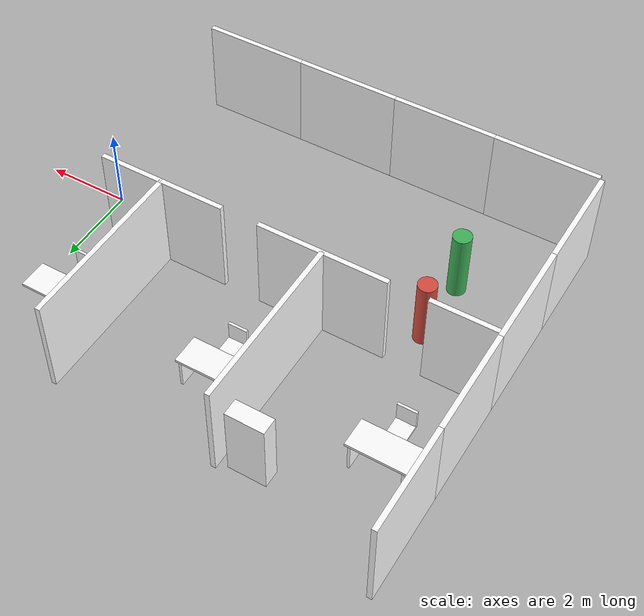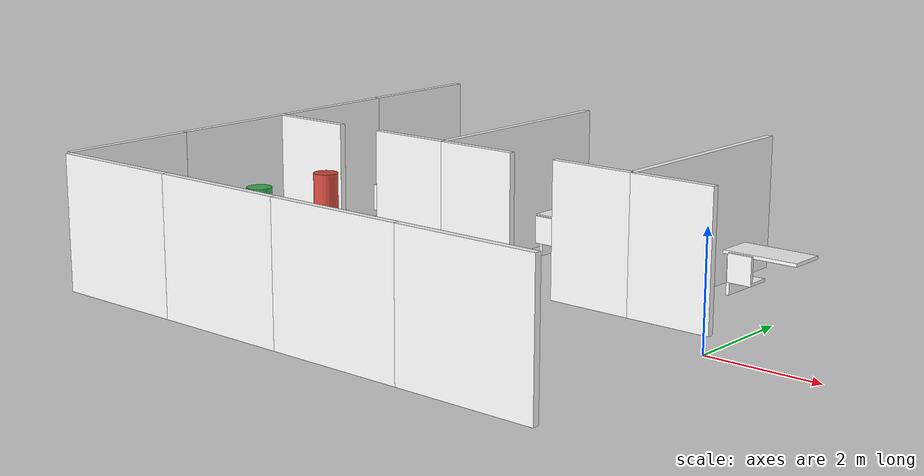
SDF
<sdf version="1.9">
 <world name="office">
  <model name="ground_plane">
   <static>true</static>
   <link name="link">
    <collision name="collision">
     <geometry><plane><normal>0 0 1</normal><size>100 100</size></plane></geometry>
     <surface><friction><ode><mu>1.0</mu><mu2>1.0</mu2></ode></friction></surface>
    </collision>
   </link>
  </model>
  <model name="w_s0">
   <static>true</static>
   <pose>-8.7500 -4.0600 1.2000 0 0 0</pose>
   <link name="link">
    <collision name="c"><geometry><box><size>2.5000 0.1200 2.4000</size></box></geometry></collision>
    <visual name="v">
     <geometry><box><size>2.5000 0.1200 2.4000</size></box></geometry>
     <material>
      <diffuse>1 1 1 1</diffuse>
      <pbr>
       <metal>
        <albedo_map>model://room_materials/materials/textures/office_000.png</albedo_map>
        <roughness>0.92</roughness>
       </metal>
      </pbr>
     </material>
    </visual>
   </link>
  </model>
  <model name="w_s2">
   <static>true</static>
   <pose>-6.2500 -4.0600 1.2000 0 0 0</pose>
   <link name="link">
    <collision name="c"><geometry><box><size>2.5000 0.1200 2.4000</size></box></geometry></collision>
    <visual name="v">
     <geometry><box><size>2.5000 0.1200 2.4000</size></box></geometry>
     <material>
      <diffuse>1 1 1 1</diffuse>
      <pbr>
       <metal>
        <albedo_map>model://room_materials/materials/textures/office_002.png</albedo_map>
        <roughness>0.92</roughness>
       </metal>
      </pbr>
     </material>
    </visual>
   </link>
  </model>
  <model name="w_s4">
   <static>true</static>
   <pose>-3.7500 -4.0600 1.2000 0 0 0</pose>
   <link name="link">
    <collision name="c"><geometry><box><size>2.5000 0.1200 2.4000</size></box></geometry></collision>
    <visual name="v">
     <geometry><box><size>2.5000 0.1200 2.4000</size></box></geometry>
     <material>
      <diffuse>1 1 1 1</diffuse>
      <pbr>
       <metal>
        <albedo_map>model://room_materials/materials/textures/office_004.png</albedo_map>
        <roughness>0.92</roughness>
       </metal>
      </pbr>
     </material>
    </visual>
   </link>
  </model>
  <model name="w_s6">
   <static>true</static>
   <pose>-1.2500 -4.0600 1.2000 0 0 0</pose>
   <link name="link">
    <collision name="c"><geometry><box><size>2.5000 0.1200 2.4000</size></box></geometry></collision>
    <visual name="v">
     <geometry><box><size>2.5000 0.1200 2.4000</size></box></geometry>
     <material>
      <diffuse>1 1 1 1</diffuse>
      <pbr>
       <metal>
        <albedo_map>model://room_materials/materials/textures/office_006.png</albedo_map>
        <roughness>0.92</roughness>
       </metal>
      </pbr>
     </material>
    </visual>
   </link>
  </model>
  <model name="w_w16">
   <static>true</static>
   <pose>-10.0600 -2.7500 1.2000 0 0 0</pose>
   <link name="link">
    <collision name="c"><geometry><box><size>0.1200 2.5000 2.4000</size></box></geometry></collision>
    <visual name="v">
     <geometry><box><size>0.1200 2.5000 2.4000</size></box></geometry>
     <material>
      <diffuse>1 1 1 1</diffuse>
      <pbr>
       <metal>
        <albedo_map>model://room_materials/materials/textures/office_016.png</albedo_map>
        <roughness>0.92</roughness>
       </metal>
      </pbr>
     </material>
    </visual>
   </link>
  </model>
  <model name="w_w18">
   <static>true</static>
   <pose>-10.0600 -0.2500 1.2000 0 0 0</pose>
   <link name="link">
    <collision name="c"><geometry><box><size>0.1200 2.5000 2.4000</size></box></geometry></collision>
    <visual name="v">
     <geometry><box><size>0.1200 2.5000 2.4000</size></box></geometry>
     <material>
      <diffuse>1 1 1 1</diffuse>
      <pbr>
       <metal>
        <albedo_map>model://room_materials/materials/textures/office_018.png</albedo_map>
        <roughness>0.92</roughness>
       </metal>
      </pbr>
     </material>
    </visual>
   </link>
  </model>
  <model name="w_w20">
   <static>true</static>
   <pose>-10.0600 2.2500 1.2000 0 0 0</pose>
   <link name="link">
    <collision name="c"><geometry><box><size>0.1200 2.5000 2.4000</size></box></geometry></collision>
    <visual name="v">
     <geometry><box><size>0.1200 2.5000 2.4000</size></box></geometry>
     <material>
      <diffuse>1 1 1 1</diffuse>
      <pbr>
       <metal>
        <albedo_map>model://room_materials/materials/textures/office_020.png</albedo_map>
        <roughness>0.92</roughness>
       </metal>
      </pbr>
     </material>
    </visual>
   </link>
  </model>
  <model name="w_w22">
   <static>true</static>
   <pose>-10.0600 4.7500 1.2000 0 0 0</pose>
   <link name="link">
    <collision name="c"><geometry><box><size>0.1200 2.5000 2.4000</size></box></geometry></collision>
    <visual name="v">
     <geometry><box><size>0.1200 2.5000 2.4000</size></box></geometry>
     <material>
      <diffuse>1 1 1 1</diffuse>
      <pbr>
       <metal>
        <albedo_map>model://room_materials/materials/textures/office_022.png</albedo_map>
        <roughness>0.92</roughness>
       </metal>
      </pbr>
     </material>
    </visual>
   </link>
  </model>
  <model name="cA_n_0a">
   <static>true</static>
   <pose>-9.2250 0.9000 1.2000 0 0 0</pose>
   <link name="link">
    <collision name="c"><geometry><box><size>1.5500 0.1200 2.4000</size></box></geometry></collision>
    <visual name="v">
     <geometry><box><size>1.5500 0.1200 2.4000</size></box></geometry>
     <material>
      <diffuse>1 1 1 1</diffuse>
      <pbr>
       <metal>
        <albedo_map>model://room_materials/materials/textures/office_028.png</albedo_map>
        <roughness>0.92</roughness>
       </metal>
      </pbr>
     </material>
    </visual>
   </link>
  </model>
  <model name="cA_n_0b">
   <static>true</static>
   <pose>-6.7750 0.9000 1.2000 0 0 0</pose>
   <link name="link">
    <collision name="c"><geometry><box><size>1.5500 0.1200 2.4000</size></box></geometry></collision>
    <visual name="v">
     <geometry><box><size>1.5500 0.1200 2.4000</size></box></geometry>
     <material>
      <diffuse>1 1 1 1</diffuse>
      <pbr>
       <metal>
        <albedo_map>model://room_materials/materials/textures/office_029.png</albedo_map>
        <roughness>0.92</roughness>
       </metal>
      </pbr>
     </material>
    </visual>
   </link>
  </model>
  <model name="cA_n_1a">
   <static>true</static>
   <pose>-5.2250 0.9000 1.2000 0 0 0</pose>
   <link name="link">
    <collision name="c"><geometry><box><size>1.5500 0.1200 2.4000</size></box></geometry></collision>
    <visual name="v">
     <geometry><box><size>1.5500 0.1200 2.4000</size></box></geometry>
     <material>
      <diffuse>1 1 1 1</diffuse>
      <pbr>
       <metal>
        <albedo_map>model://room_materials/materials/textures/office_030.png</albedo_map>
        <roughness>0.92</roughness>
       </metal>
      </pbr>
     </material>
    </visual>
   </link>
  </model>
  <model name="cA_n_1b">
   <static>true</static>
   <pose>-2.7750 0.9000 1.2000 0 0 0</pose>
   <link name="link">
    <collision name="c"><geometry><box><size>1.5500 0.1200 2.4000</size></box></geometry></collision>
    <visual name="v">
     <geometry><box><size>1.5500 0.1200 2.4000</size></box></geometry>
     <material>
      <diffuse>1 1 1 1</diffuse>
      <pbr>
       <metal>
        <albedo_map>model://room_materials/materials/textures/office_031.png</albedo_map>
        <roughness>0.92</roughness>
       </metal>
      </pbr>
     </material>
    </visual>
   </link>
  </model>
  <model name="cA_n_2a">
   <static>true</static>
   <pose>-1.2250 0.9000 1.2000 0 0 0</pose>
   <link name="link">
    <collision name="c"><geometry><box><size>1.5500 0.1200 2.4000</size></box></geometry></collision>
    <visual name="v">
     <geometry><box><size>1.5500 0.1200 2.4000</size></box></geometry>
     <material>
      <diffuse>1 1 1 1</diffuse>
      <pbr>
       <metal>
        <albedo_map>model://room_materials/materials/textures/office_032.png</albedo_map>
        <roughness>0.92</roughness>
       </metal>
      </pbr>
     </material>
    </visual>
   </link>
  </model>
  <model name="p1_0">
   <static>true</static>
   <pose>-6.0000 3.0000 1.2000 0 0 0</pose>
   <link name="link">
    <collision name="c"><geometry><box><size>0.1200 4.2000 2.4000</size></box></geometry></collision>
    <visual name="v">
     <geometry><box><size>0.1200 4.2000 2.4000</size></box></geometry>
     <material>
      <diffuse>1 1 1 1</diffuse>
      <pbr>
       <metal>
        <albedo_map>model://room_materials/materials/textures/office_058.png</albedo_map>
        <roughness>0.92</roughness>
       </metal>
      </pbr>
     </material>
    </visual>
   </link>
  </model>
  <model name="p1_1">
   <static>true</static>
   <pose>-2.0000 3.0000 1.2000 0 0 0</pose>
   <link name="link">
    <collision name="c"><geometry><box><size>0.1200 4.2000 2.4000</size></box></geometry></collision>
    <visual name="v">
     <geometry><box><size>0.1200 4.2000 2.4000</size></box></geometry>
     <material>
      <diffuse>1 1 1 1</diffuse>
      <pbr>
       <metal>
        <albedo_map>model://room_materials/materials/textures/office_060.png</albedo_map>
        <roughness>0.92</roughness>
       </metal>
      </pbr>
     </material>
    </visual>
   </link>
  </model>
  <model name="desk_0">
   <static>true</static>
   <pose>-8.900 3.400 0.750 0 0 0</pose>
   <link name="link">
    <collision name="c"><geometry><box><size>1.400 0.700 0.060</size></box></geometry></collision>
    <visual name="v">
     <geometry><box><size>1.400 0.700 0.060</size></box></geometry>
     <material>
      <diffuse>1 1 1 1</diffuse>
      <pbr>
       <metal>
        <albedo_map>model://room_materials/materials/textures/poster1.png</albedo_map>
        <roughness>0.92</roughness>
       </metal>
      </pbr>
     </material>
    </visual>
   </link>
  </model>
  <model name="desk_0_l1">
   <static>true</static>
   <pose>-9.500 3.400 0.360 0 0 0</pose>
   <link name="link">
    <collision name="c"><geometry><box><size>0.060 0.660 0.720</size></box></geometry></collision>
    <visual name="v">
     <geometry><box><size>0.060 0.660 0.720</size></box></geometry>
     <material>
      <diffuse>1 1 1 1</diffuse>
      <pbr>
       <metal>
        <albedo_map>model://room_materials/materials/textures/crate.png</albedo_map>
        <roughness>0.92</roughness>
       </metal>
      </pbr>
     </material>
    </visual>
   </link>
  </model>
  <model name="desk_0_l2">
   <static>true</static>
   <pose>-8.300 3.400 0.360 0 0 0</pose>
   <link name="link">
    <collision name="c"><geometry><box><size>0.060 0.660 0.720</size></box></geometry></collision>
    <visual name="v">
     <geometry><box><size>0.060 0.660 0.720</size></box></geometry>
     <material>
      <diffuse>1 1 1 1</diffuse>
      <pbr>
       <metal>
        <albedo_map>model://room_materials/materials/textures/crate.png</albedo_map>
        <roughness>0.92</roughness>
       </metal>
      </pbr>
     </material>
    </visual>
   </link>
  </model>
  <model name="chair_0">
   <static>true</static>
   <pose>-8.900 2.650 0.455 0 0 0</pose>
   <link name="link">
    <collision name="c"><geometry><box><size>0.450 0.450 0.050</size></box></geometry></collision>
    <visual name="v">
     <geometry><box><size>0.450 0.450 0.050</size></box></geometry>
     <material>
      <diffuse>1 1 1 1</diffuse>
      <pbr>
       <metal>
        <albedo_map>model://room_materials/materials/textures/crate.png</albedo_map>
        <roughness>0.92</roughness>
       </metal>
      </pbr>
     </material>
    </visual>
   </link>
  </model>
  <model name="chair_0_b">
   <static>true</static>
   <pose>-8.900 2.450 0.680 0 0 0</pose>
   <link name="link">
    <collision name="c"><geometry><box><size>0.450 0.060 0.500</size></box></geometry></collision>
    <visual name="v">
     <geometry><box><size>0.450 0.060 0.500</size></box></geometry>
     <material>
      <diffuse>1 1 1 1</diffuse>
      <pbr>
       <metal>
        <albedo_map>model://room_materials/materials/textures/poster1.png</albedo_map>
        <roughness>0.92</roughness>
       </metal>
      </pbr>
     </material>
    </visual>
   </link>
  </model>
  <model name="shelf_0">
   <static>true</static>
   <pose>-6.700 4.750 0.900 0 0 0</pose>
   <link name="link">
    <collision name="c"><geometry><box><size>0.900 0.400 1.800</size></box></geometry></collision>
    <visual name="v">
     <geometry><box><size>0.900 0.400 1.800</size></box></geometry>
     <material>
      <diffuse>1 1 1 1</diffuse>
      <pbr>
       <metal>
        <albedo_map>model://room_materials/materials/textures/poster1.png</albedo_map>
        <roughness>0.92</roughness>
       </metal>
      </pbr>
     </material>
    </visual>
   </link>
  </model>
  <model name="desk_1">
   <static>true</static>
   <pose>-4.900 3.400 0.750 0 0 0</pose>
   <link name="link">
    <collision name="c"><geometry><box><size>1.400 0.700 0.060</size></box></geometry></collision>
    <visual name="v">
     <geometry><box><size>1.400 0.700 0.060</size></box></geometry>
     <material>
      <diffuse>1 1 1 1</diffuse>
      <pbr>
       <metal>
        <albedo_map>model://room_materials/materials/textures/poster2.png</albedo_map>
        <roughness>0.92</roughness>
       </metal>
      </pbr>
     </material>
    </visual>
   </link>
  </model>
  <model name="desk_1_l1">
   <static>true</static>
   <pose>-5.500 3.400 0.360 0 0 0</pose>
   <link name="link">
    <collision name="c"><geometry><box><size>0.060 0.660 0.720</size></box></geometry></collision>
    <visual name="v">
     <geometry><box><size>0.060 0.660 0.720</size></box></geometry>
     <material>
      <diffuse>1 1 1 1</diffuse>
      <pbr>
       <metal>
        <albedo_map>model://room_materials/materials/textures/crate.png</albedo_map>
        <roughness>0.92</roughness>
       </metal>
      </pbr>
     </material>
    </visual>
   </link>
  </model>
  <model name="desk_1_l2">
   <static>true</static>
   <pose>-4.300 3.400 0.360 0 0 0</pose>
   <link name="link">
    <collision name="c"><geometry><box><size>0.060 0.660 0.720</size></box></geometry></collision>
    <visual name="v">
     <geometry><box><size>0.060 0.660 0.720</size></box></geometry>
     <material>
      <diffuse>1 1 1 1</diffuse>
      <pbr>
       <metal>
        <albedo_map>model://room_materials/materials/textures/crate.png</albedo_map>
        <roughness>0.92</roughness>
       </metal>
      </pbr>
     </material>
    </visual>
   </link>
  </model>
  <model name="chair_1">
   <static>true</static>
   <pose>-4.900 2.650 0.455 0 0 0</pose>
   <link name="link">
    <collision name="c"><geometry><box><size>0.450 0.450 0.050</size></box></geometry></collision>
    <visual name="v">
     <geometry><box><size>0.450 0.450 0.050</size></box></geometry>
     <material>
      <diffuse>1 1 1 1</diffuse>
      <pbr>
       <metal>
        <albedo_map>model://room_materials/materials/textures/crate.png</albedo_map>
        <roughness>0.92</roughness>
       </metal>
      </pbr>
     </material>
    </visual>
   </link>
  </model>
  <model name="chair_1_b">
   <static>true</static>
   <pose>-4.900 2.450 0.680 0 0 0</pose>
   <link name="link">
    <collision name="c"><geometry><box><size>0.450 0.060 0.500</size></box></geometry></collision>
    <visual name="v">
     <geometry><box><size>0.450 0.060 0.500</size></box></geometry>
     <material>
      <diffuse>1 1 1 1</diffuse>
      <pbr>
       <metal>
        <albedo_map>model://room_materials/materials/textures/poster2.png</albedo_map>
        <roughness>0.92</roughness>
       </metal>
      </pbr>
     </material>
    </visual>
   </link>
  </model>
  <model name="desk_2">
   <static>true</static>
   <pose>-0.900 3.400 0.750 0 0 0</pose>
   <link name="link">
    <collision name="c"><geometry><box><size>1.400 0.700 0.060</size></box></geometry></collision>
    <visual name="v">
     <geometry><box><size>1.400 0.700 0.060</size></box></geometry>
     <material>
      <diffuse>1 1 1 1</diffuse>
      <pbr>
       <metal>
        <albedo_map>model://room_materials/materials/textures/poster3.png</albedo_map>
        <roughness>0.92</roughness>
       </metal>
      </pbr>
     </material>
    </visual>
   </link>
  </model>
  <model name="desk_2_l1">
   <static>true</static>
   <pose>-1.500 3.400 0.360 0 0 0</pose>
   <link name="link">
    <collision name="c"><geometry><box><size>0.060 0.660 0.720</size></box></geometry></collision>
    <visual name="v">
     <geometry><box><size>0.060 0.660 0.720</size></box></geometry>
     <material>
      <diffuse>1 1 1 1</diffuse>
      <pbr>
       <metal>
        <albedo_map>model://room_materials/materials/textures/crate.png</albedo_map>
        <roughness>0.92</roughness>
       </metal>
      </pbr>
     </material>
    </visual>
   </link>
  </model>
  <model name="chair_2">
   <static>true</static>
   <pose>-0.900 2.650 0.455 0 0 0</pose>
   <link name="link">
    <collision name="c"><geometry><box><size>0.450 0.450 0.050</size></box></geometry></collision>
    <visual name="v">
     <geometry><box><size>0.450 0.450 0.050</size></box></geometry>
     <material>
      <diffuse>1 1 1 1</diffuse>
      <pbr>
       <metal>
        <albedo_map>model://room_materials/materials/textures/crate.png</albedo_map>
        <roughness>0.92</roughness>
       </metal>
      </pbr>
     </material>
    </visual>
   </link>
  </model>
  <model name="chair_2_b">
   <static>true</static>
   <pose>-0.900 2.450 0.680 0 0 0</pose>
   <link name="link">
    <collision name="c"><geometry><box><size>0.450 0.060 0.500</size></box></geometry></collision>
    <visual name="v">
     <geometry><box><size>0.450 0.060 0.500</size></box></geometry>
     <material>
      <diffuse>1 1 1 1</diffuse>
      <pbr>
       <metal>
        <albedo_map>model://room_materials/materials/textures/poster3.png</albedo_map>
        <roughness>0.92</roughness>
       </metal>
      </pbr>
     </material>
    </visual>
   </link>
  </model>
  <model name="person_0">
   <pose>-8.00 0.00 0.85 0 0 0</pose>
   <link name="link">
    <gravity>false</gravity>
    <inertial>
     <mass>70</mass>
     <inertia><ixx>200</ixx><iyy>200</iyy><izz>200</izz><ixy>0</ixy><ixz>0</ixz><iyz>0</iyz></inertia>
    </inertial>
    <collision name="c">
     <geometry><cylinder><radius>0.22</radius><length>1.70</length></cylinder></geometry>
    </collision>
    <visual name="v">
     <geometry><cylinder><radius>0.22</radius><length>1.70</length></cylinder></geometry>
     <material>
      <ambient>0.85 0.30 0.25 1</ambient>
      <diffuse>0.85 0.30 0.25 1</diffuse>
      <specular>0.2 0.2 0.2 1</specular>
     </material>
    </visual>
   </link>
   <plugin filename="gz-sim-velocity-control-system" name="gz::sim::systems::VelocityControl">
    <topic>/model/person_0/cmd_vel</topic>
   </plugin>
  </model>
  <model name="person_2">
   <pose>-8.00 -1.60 0.85 0 0 0</pose>
   <link name="link">
    <gravity>false</gravity>
    <inertial>
     <mass>70</mass>
     <inertia><ixx>200</ixx><iyy>200</iyy><izz>200</izz><ixy>0</ixy><ixz>0</ixz><iyz>0</iyz></inertia>
    </inertial>
    <collision name="c">
     <geometry><cylinder><radius>0.22</radius><length>1.70</length></cylinder></geometry>
    </collision>
    <visual name="v">
     <geometry><cylinder><radius>0.22</radius><length>1.70</length></cylinder></geometry>
     <material>
      <ambient>0.25 0.70 0.35 1</ambient>
      <diffuse>0.25 0.70 0.35 1</diffuse>
      <specular>0.2 0.2 0.2 1</specular>
     </material>
    </visual>
   </link>
   <plugin filename="gz-sim-velocity-control-system" name="gz::sim::systems::VelocityControl">
    <topic>/model/person_2/cmd_vel</topic>
   </plugin>
  </model>
 </world>
</sdf>
